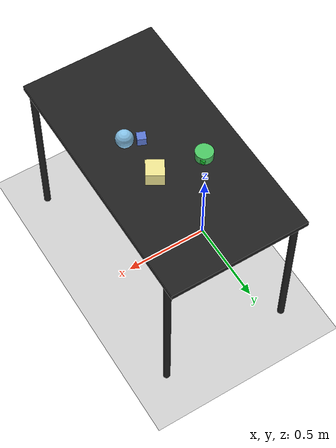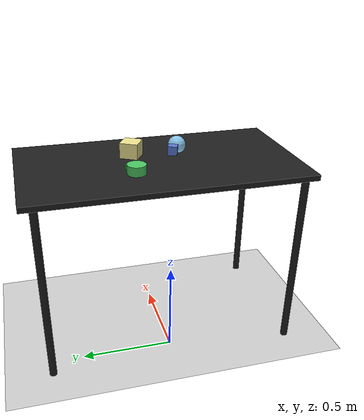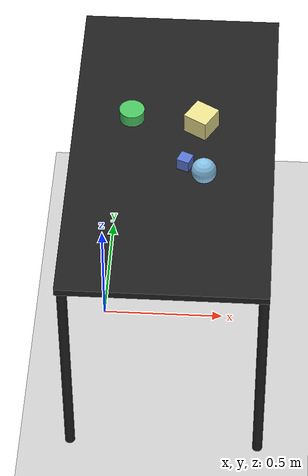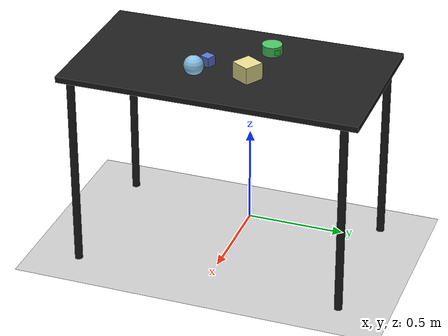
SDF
<?xml version="1.0" ?>
<sdf version="1.6">
  <world name="arm_world">
    <plugin filename="gz-sim-physics-system" name="gz::sim::systems::Physics">
      <engine>
        <filename>libgz-physics-bullet-featherstone-plugin.so</filename>
      </engine>
    </plugin>
    <plugin filename="gz-sim-user-commands-system" name="gz::sim::systems::UserCommands"/>
    <plugin filename="gz-sim-scene-broadcaster-system" name="gz::sim::systems::SceneBroadcaster"/>
    <plugin filename="gz-sim-sensors-system" name="gz::sim::systems::Sensors">
      <render_engine>ogre2</render_engine>
    </plugin>
    <gravity>0.0 0.0 -9.8</gravity>
    <scene>
      <shadows>false</shadows>
    </scene>
    <gui>
      <camera name="user_camera">
        <pose>0.75 -0.75 1.4 0 0.29 2.21</pose>
      </camera>
    </gui>
    <include>
      <uri>https://fuel.gazebosim.org/1.0/OpenRobotics/models/Sun</uri>
    </include>
    <model name="table">
      <static>true</static>
      <include>
        <uri>model://table</uri>
      </include>
      <pose>0.29 0 0 0 0 1.5708</pose>
    </model>
    <model name="ground_plane">
      <static>true</static>
      <link name="link">
        <collision name="collision">
          <geometry>
            <plane>
              <normal>0 0 1</normal>
            </plane>
          </geometry>
          <surface>
            <friction>
              <ode>
                <mu>1.0</mu>
                <mu2>1.0</mu2>
              </ode>
            </friction>
          </surface>
        </collision>
        <visual name="visual">
          <geometry>
            <plane>
              <normal>0 0 1</normal>
              <size>100 100</size>
            </plane>
          </geometry>
          <material>
            <ambient>0.8 0.8 0.8 1</ambient>
            <diffuse>0.8 0.8 0.8 1</diffuse>
            <specular>0.8 0.8 0.8 1</specular>
          </material>
        </visual>
      </link>
    </model>
    <model name="cylinder_l_0">
      <pose>0.121 0.15 1.05 0 0 2.15</pose>
      <link name="cylinder_l_0_link">
        <collision name="cylinder_l_0_collision">
          <geometry>
            <cylinder>
              <radius>0.05</radius>
              <length>0.05</length>
            </cylinder>
          </geometry>
        </collision>
        <visual name="cylinder_l_0_visual">
          <geometry>
            <cylinder>
              <radius>0.05</radius>
              <length>0.05</length>
            </cylinder>
          </geometry>
          <material>
            <ambient>0.29 0.77 0.38 1</ambient>
            <diffuse>0.29 0.77 0.38 1</diffuse>
          </material>
        </visual>
        <velocity_decay>
          <linear>1</linear>
          <angular>1</angular>
        </velocity_decay>
      </link>
    </model>
    <model name="cube_l_1">
      <pose>0.397 0.119 1.05 0 0 2.61</pose>
      <link name="cube_l_1_link">
        <collision name="cube_l_1_collision">
          <geometry>
            <box>
              <size>0.1 0.1 0.1</size>
            </box>
          </geometry>
        </collision>
        <visual name="cube_l_1_visual">
          <geometry>
            <box>
              <size>0.1 0.1 0.1</size>
            </box>
          </geometry>
          <material>
            <ambient>0.92 0.88 0.56 1</ambient>
            <diffuse>0.92 0.88 0.56 1</diffuse>
          </material>
        </visual>
        <velocity_decay>
          <linear>1</linear>
          <angular>1</angular>
        </velocity_decay>
      </link>
    </model>
    <model name="cube_m_2">
      <pose>0.344 -0.102 1.05 0 0 5.89</pose>
      <link name="cube_m_2_link">
        <collision name="cube_m_2_collision">
          <geometry>
            <box>
              <size>0.05 0.05 0.05</size>
            </box>
          </geometry>
        </collision>
        <visual name="cube_m_2_visual">
          <geometry>
            <box>
              <size>0.05 0.05 0.05</size>
            </box>
          </geometry>
          <material>
            <ambient>0.35 0.46 0.82 1</ambient>
            <diffuse>0.35 0.46 0.82 1</diffuse>
          </material>
        </visual>
        <velocity_decay>
          <linear>1</linear>
          <angular>1</angular>
        </velocity_decay>
      </link>
    </model>
    <model name="cube_s_3">
      <pose>0.149 0.185 1.05 0 0 1.94</pose>
      <link name="cube_s_3_link">
        <collision name="cube_s_3_collision">
          <geometry>
            <box>
              <size>0.025 0.025 0.025</size>
            </box>
          </geometry>
        </collision>
        <visual name="cube_s_3_visual">
          <geometry>
            <box>
              <size>0.025 0.025 0.025</size>
            </box>
          </geometry>
          <material>
            <ambient>0.11 0.81 0.2 1</ambient>
            <diffuse>0.11 0.81 0.2 1</diffuse>
          </material>
        </visual>
        <velocity_decay>
          <linear>1</linear>
          <angular>1</angular>
        </velocity_decay>
      </link>
    </model>
    <model name="sphere_l_4">
      <pose>0.419 -0.146 1.05 0 0 5.38</pose>
      <link name="sphere_l_4_link">
        <collision name="sphere_l_4_collision">
          <geometry>
            <sphere>
              <radius>0.05</radius>
            </sphere>
          </geometry>
        </collision>
        <visual name="sphere_l_4_visual">
          <geometry>
            <sphere>
              <radius>0.05</radius>
            </sphere>
          </geometry>
          <material>
            <ambient>0.53 0.77 0.92 1</ambient>
            <diffuse>0.53 0.77 0.92 1</diffuse>
          </material>
        </visual>
        <velocity_decay>
          <linear>1</linear>
          <angular>1</angular>
        </velocity_decay>
      </link>
    </model>
  </world>
</sdf>

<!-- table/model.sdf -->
<sdf version="1.5">
  <model name="table">
    <static>true</static>
    <link name="link">
      <collision name="surface">
        <pose>0 0 1.0 0 0 0</pose>
        <geometry>
          <box>
            <size>1.5 0.8 0.03</size>
          </box>
        </geometry>
        <surface>
          <friction>
            <ode>
              <mu>0.6</mu>
              <mu2>0.6</mu2>
            </ode>
          </friction>
        </surface>
      </collision>
      <visual name="surface">
        <pose>0 0 1.0 0 0 0</pose>
        <geometry>
          <box>
            <size>1.5 0.8 0.03</size>
          </box>
        </geometry>
        <material>
          <script>
            <uri>file://media/materials/scripts/gazebo.material</uri>
            <name>Gazebo/Black</name>
          </script>
        </material>
      </visual>
      <collision name="front_left_leg">
        <pose>0.68 0.38 0.5 0 0 0</pose>
        <geometry>
          <cylinder>
            <radius>0.02</radius>
            <length>1.0</length>
          </cylinder>
        </geometry>
      </collision>
      <visual name="front_left_leg">
        <pose>0.68 0.38 0.5 0 0 0</pose>
        <geometry>
          <cylinder>
            <radius>0.02</radius>
            <length>1.0</length>
          </cylinder>
        </geometry>
        <material>
          <script>
            <uri>file://media/materials/scripts/gazebo.material</uri>
            <name>Gazebo/Black</name>
          </script>
        </material>
      </visual>
      <collision name="front_right_leg">
        <pose>0.68 -0.38 0.5 0 0 0</pose>
        <geometry>
          <cylinder>
            <radius>0.02</radius>
            <length>1.0</length>
          </cylinder>
        </geometry>
      </collision>
      <visual name="front_right_leg">
        <pose>0.68 -0.38 0.5 0 0 0</pose>
        <geometry>
          <cylinder>
            <radius>0.02</radius>
            <length>1.0</length>
          </cylinder>
        </geometry>
        <material>
          <script>
            <uri>file://media/materials/scripts/gazebo.material</uri>
            <name>Gazebo/Black</name>
          </script>
        </material>
      </visual>
      <collision name="back_right_leg">
        <pose>-0.68 -0.38 0.5 0 0 0</pose>
        <geometry>
          <cylinder>
            <radius>0.02</radius>
            <length>1.0</length>
          </cylinder>
        </geometry>
      </collision>
      <visual name="back_right_leg">
        <pose>-0.68 -0.38 0.5 0 0 0</pose>
        <geometry>
          <cylinder>
            <radius>0.02</radius>
            <length>1.0</length>
          </cylinder>
        </geometry>
        <material>
          <script>
            <uri>file://media/materials/scripts/gazebo.material</uri>
            <name>Gazebo/Black</name>
          </script>
        </material>
      </visual>
      <collision name="back_left_leg">
        <pose>-0.68 0.38 0.5 0 0 0</pose>
        <geometry>
          <cylinder>
            <radius>0.02</radius>
            <length>1.0</length>
          </cylinder>
        </geometry>
      </collision>
      <visual name="back_left_leg">
        <pose>-0.68 0.38 0.5 0 0 0</pose>
        <geometry>
          <cylinder>
            <radius>0.02</radius>
            <length>1.0</length>
          </cylinder>
        </geometry>
        <material>
          <script>
            <uri>file://media/materials/scripts/gazebo.material</uri>
            <name>Gazebo/Black</name>
          </script>
        </material>
      </visual>
    </link>
  </model>
</sdf>
